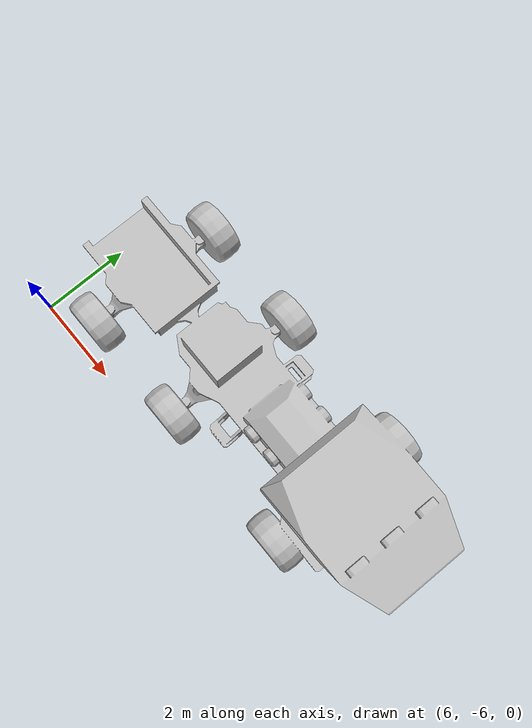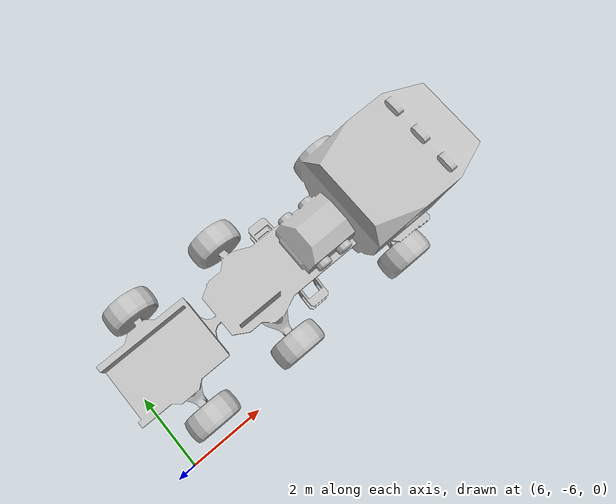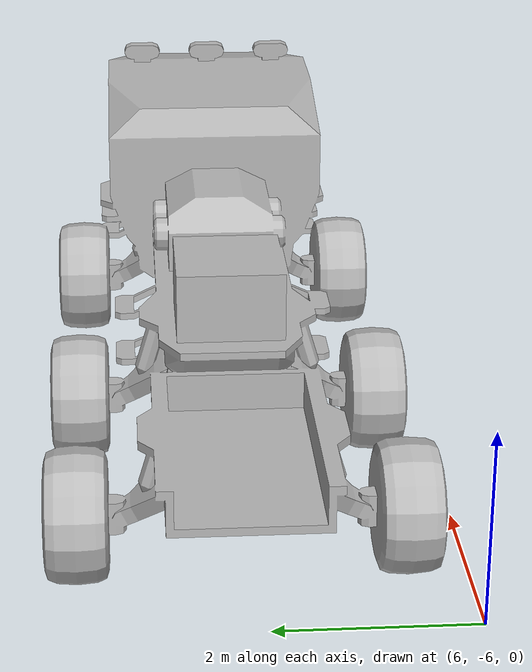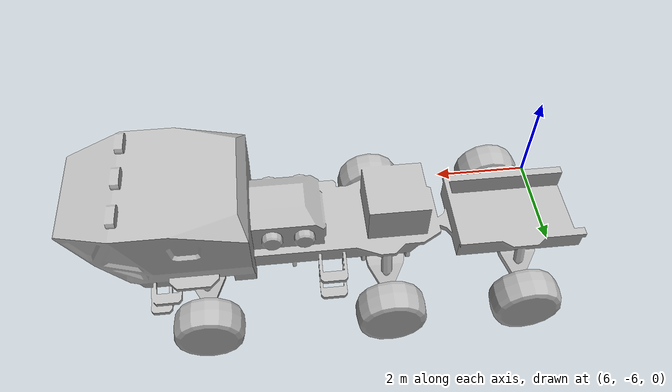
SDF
<sdf version="1.6">
 <world name="SRC_finals">
  <include>
   <pose>11.448
        -3.810000000000002
        0
        0
        0
        1.5707963267948963</pose>
   <uri>model://mars_explorer</uri>
  </include>
 </world>
</sdf>
